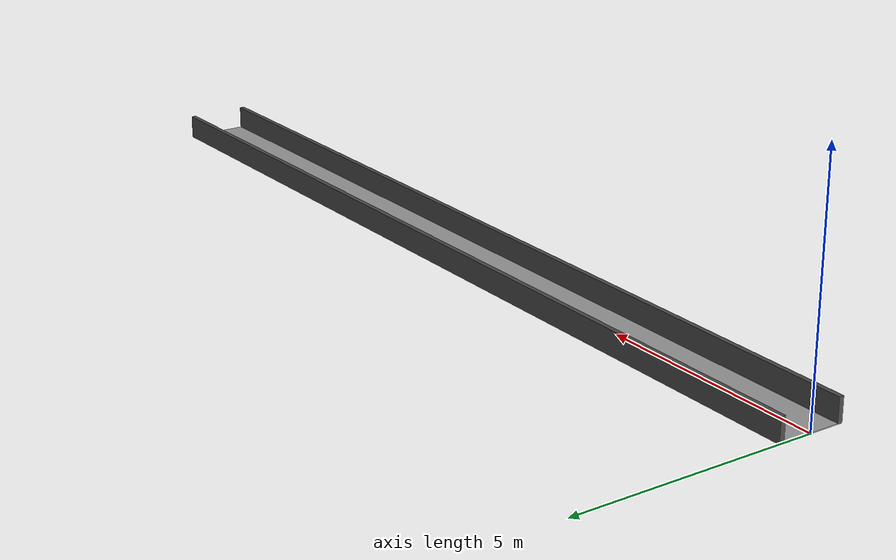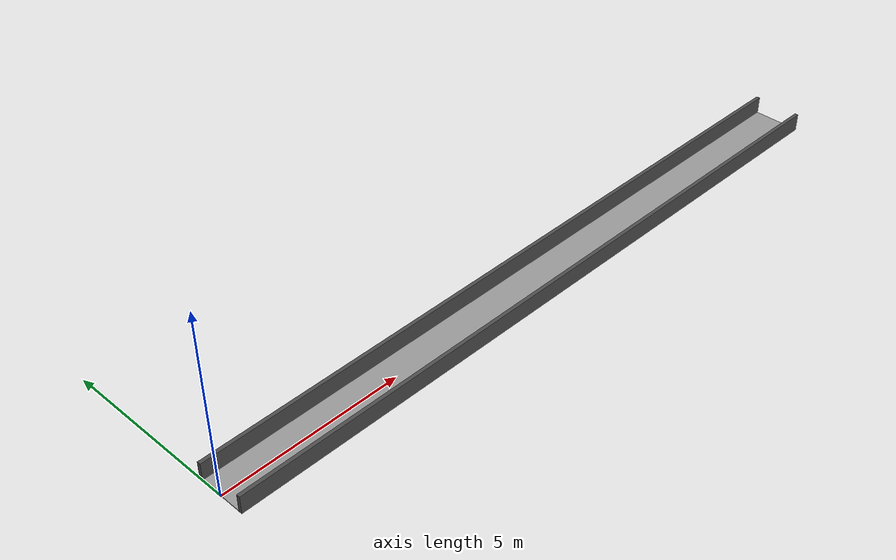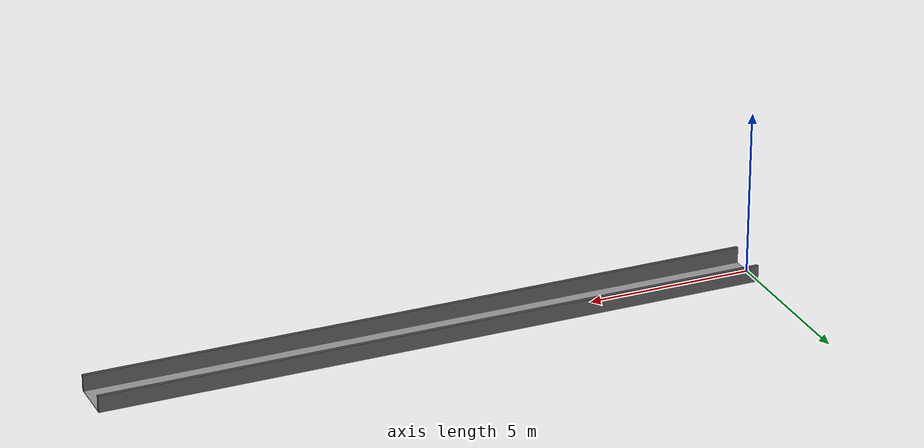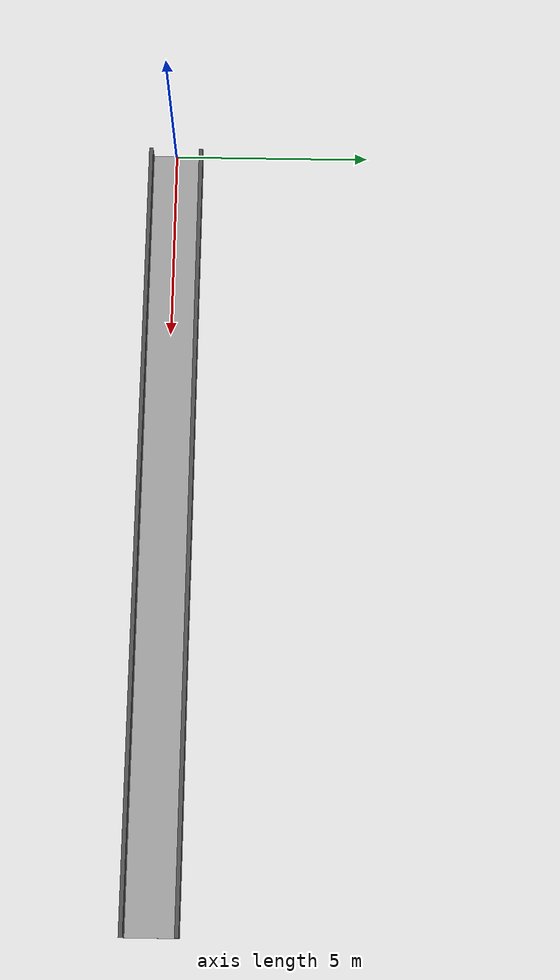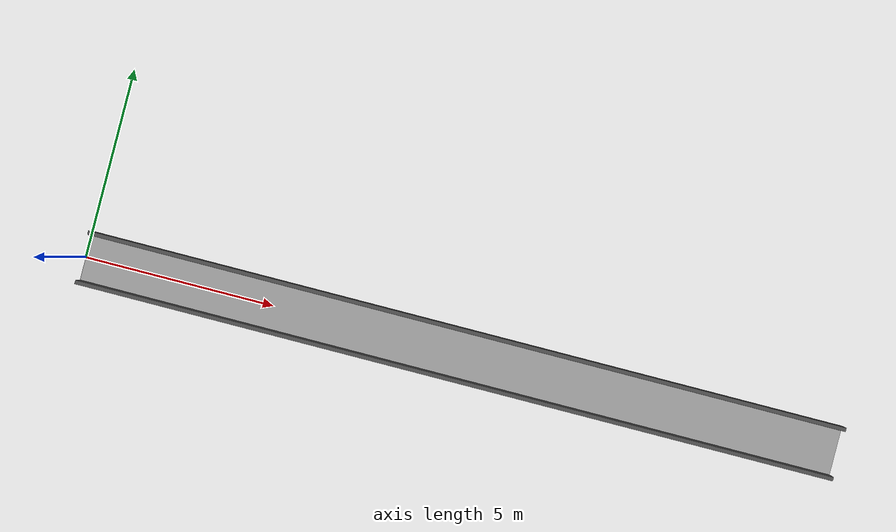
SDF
<?xml version="1.0" ?>
<sdf version="1.6">
  <world name="default">
    <include>
      <uri>model://sun</uri>
    </include>
    <include>
      <uri>model://narrow_pipe</uri>
      <pose>10 0 0 0 0 0</pose> <!-- 将管道放置在小车前方 -->
    </include>

    <!-- 物理引擎步长设置，保证 MPC 求解时的实时性匹配 -->
    <physics type="ode">
      <real_time_update_rate>1000.0</real_time_update_rate>
      <max_step_size>0.001</max_step_size>
    </physics>
  </world>
</sdf>

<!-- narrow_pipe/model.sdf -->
<sdf version="1.6">
  <model name="narrow_pipe">
    <!-- 设为 static，这样管道才不会受重力影响掉下去或者被小车撞飞 -->
    <static>true</static>
    <link name="pipe_link">

      <!-- ================= 1. 湿滑底面 (极低摩擦力) ================= -->
      <collision name="floor_collision">
        <!-- Z=0.01 让底板贴近地面 -->
        <pose>0 0 0.01 0 0 0</pose>
        <geometry>
          <box><size>20.0 1.2 0.02</size></box>
        </geometry>
        <surface>
          <friction>
            <ode>
              <mu>0.15</mu>
              <mu2>0.10</mu2>
              <fdir1>1 0 0</fdir1>
              <slip1>0.2</slip1>
              <slip2>0.3</slip2>
            </ode>
          </friction>
        </surface>
      </collision>
      <visual name="floor_visual">
        <pose>0 0 0.01 0 0 0</pose>
        <geometry>
          <box><size>20.0 1.2 0.02</size></box>
        </geometry>
        <!-- 底板涂成浅灰色 -->
        <material><ambient>0.6 0.6 0.6 1</ambient></material>
      </visual>

      <!-- ================= 2. 左侧管壁 ================= -->
      <collision name="left_wall_collision">
        <!-- 向左平移 (1.2/2 + 墙厚0.1/2 = 0.65)，向上抬起 0.25 -->
        <pose>0 0.65 0.25 0 0 0</pose>
        <geometry>
          <box><size>20.0 0.1 0.5</size></box>
        </geometry>
      </collision>
      <visual name="left_wall_visual">
        <pose>0 0.65 0.25 0 0 0</pose>
        <geometry>
          <box><size>20.0 0.1 0.5</size></box>
        </geometry>
        <!-- 墙壁涂成深灰色 -->
        <material><ambient>0.3 0.3 0.3 1</ambient></material>
      </visual>

      <!-- ================= 3. 右侧管壁 ================= -->
      <collision name="right_wall_collision">
        <!-- 向右平移 -0.65，向上抬起 0.25 -->
        <pose>0 -0.65 0.25 0 0 0</pose>
        <geometry>
          <box><size>20.0 0.1 0.5</size></box>
        </geometry>
      </collision>
      <visual name="right_wall_visual">
        <pose>0 -0.65 0.25 0 0 0</pose>
        <geometry>
          <box><size>20.0 0.1 0.5</size></box>
        </geometry>
        <material><ambient>0.3 0.3 0.3 1</ambient></material>
      </visual>

    </link>
  </model>
</sdf>
